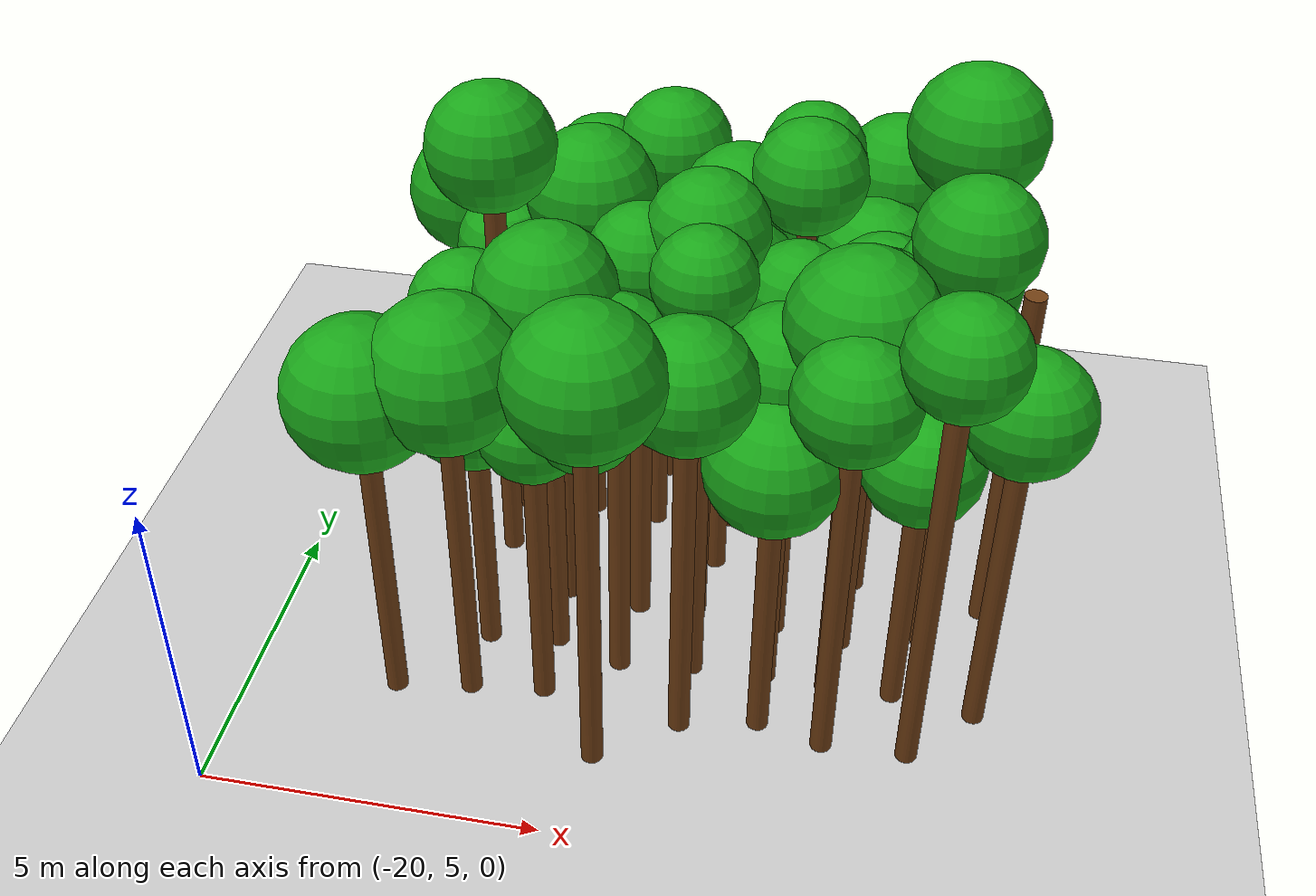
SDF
<sdf version="1.6">
 <world name="forest_world">
  <include><uri>model://sun</uri></include>
  <include><uri>model://ground_plane</uri></include>
  <model name="tree_639_trunk">
   <static>true</static>
   <pose>-17.75 7.27 2.47 0 0 0</pose>
   <link name="link">
    <collision name="collision">
     <geometry><cylinder><radius>0.16</radius><length>4.95</length></cylinder></geometry>
    </collision>
    <visual name="visual">
     <geometry><cylinder><radius>0.16</radius><length>4.95</length></cylinder></geometry>
     <material><ambient>0.35 0.20 0.05 1</ambient><diffuse>0.45 0.25 0.08 1</diffuse></material>
    </visual>
   </link>
  </model>
  <model name="tree_639_leaf">
   <static>true</static>
   <pose>-17.75 7.27 5.59 0 0 0</pose>
   <link name="link">
    <collision name="collision"><geometry><sphere><radius>1.08</radius></sphere></geometry></collision>
    <visual name="visual">
     <geometry><sphere><radius>1.08</radius></sphere></geometry>
     <material><ambient>0.05 0.45 0.05 1</ambient><diffuse>0.10 0.65 0.10 1</diffuse></material>
    </visual>
   </link>
  </model>
  <model name="tree_644_leaf">
   <static>true</static>
   <pose>-17.80 12.91 5.37 0 0 0</pose>
   <link name="link">
    <collision name="collision"><geometry><sphere><radius>1.00</radius></sphere></geometry></collision>
    <visual name="visual">
     <geometry><sphere><radius>1.00</radius></sphere></geometry>
     <material><ambient>0.05 0.45 0.05 1</ambient><diffuse>0.10 0.65 0.10 1</diffuse></material>
    </visual>
   </link>
  </model>
  <model name="tree_694_trunk">
   <static>true</static>
   <pose>-16.63 7.44 2.65 0 0 0</pose>
   <link name="link">
    <collision name="collision">
     <geometry><cylinder><radius>0.16</radius><length>5.29</length></cylinder></geometry>
    </collision>
    <visual name="visual">
     <geometry><cylinder><radius>0.16</radius><length>5.29</length></cylinder></geometry>
     <material><ambient>0.35 0.20 0.05 1</ambient><diffuse>0.45 0.25 0.08 1</diffuse></material>
    </visual>
   </link>
  </model>
  <model name="tree_694_leaf">
   <static>true</static>
   <pose>-16.63 7.44 5.95 0 0 0</pose>
   <link name="link">
    <collision name="collision"><geometry><sphere><radius>1.10</radius></sphere></geometry></collision>
    <visual name="visual">
     <geometry><sphere><radius>1.10</radius></sphere></geometry>
     <material><ambient>0.05 0.45 0.05 1</ambient><diffuse>0.10 0.65 0.10 1</diffuse></material>
    </visual>
   </link>
  </model>
  <model name="tree_695_trunk">
   <static>true</static>
   <pose>-16.62 8.53 2.06 0 0 0</pose>
   <link name="link">
    <collision name="collision">
     <geometry><cylinder><radius>0.16</radius><length>4.12</length></cylinder></geometry>
    </collision>
    <visual name="visual">
     <geometry><cylinder><radius>0.16</radius><length>4.12</length></cylinder></geometry>
     <material><ambient>0.35 0.20 0.05 1</ambient><diffuse>0.45 0.25 0.08 1</diffuse></material>
    </visual>
   </link>
  </model>
  <model name="tree_695_leaf">
   <static>true</static>
   <pose>-16.62 8.53 4.76 0 0 0</pose>
   <link name="link">
    <collision name="collision"><geometry><sphere><radius>1.06</radius></sphere></geometry></collision>
    <visual name="visual">
     <geometry><sphere><radius>1.06</radius></sphere></geometry>
     <material><ambient>0.05 0.45 0.05 1</ambient><diffuse>0.10 0.65 0.10 1</diffuse></material>
    </visual>
   </link>
  </model>
  <model name="tree_696_trunk">
   <static>true</static>
   <pose>-16.96 9.58 2.48 0 0 0</pose>
   <link name="link">
    <collision name="collision">
     <geometry><cylinder><radius>0.16</radius><length>4.96</length></cylinder></geometry>
    </collision>
    <visual name="visual">
     <geometry><cylinder><radius>0.16</radius><length>4.96</length></cylinder></geometry>
     <material><ambient>0.35 0.20 0.05 1</ambient><diffuse>0.45 0.25 0.08 1</diffuse></material>
    </visual>
   </link>
  </model>
  <model name="tree_696_leaf">
   <static>true</static>
   <pose>-16.96 9.58 5.48 0 0 0</pose>
   <link name="link">
    <collision name="collision"><geometry><sphere><radius>0.86</radius></sphere></geometry></collision>
    <visual name="visual">
     <geometry><sphere><radius>0.86</radius></sphere></geometry>
     <material><ambient>0.05 0.45 0.05 1</ambient><diffuse>0.10 0.65 0.10 1</diffuse></material>
    </visual>
   </link>
  </model>
  <model name="tree_697_trunk">
   <static>true</static>
   <pose>-16.80 10.67 3.46 0 0 0</pose>
   <link name="link">
    <collision name="collision">
     <geometry><cylinder><radius>0.16</radius><length>6.92</length></cylinder></geometry>
    </collision>
    <visual name="visual">
     <geometry><cylinder><radius>0.16</radius><length>6.92</length></cylinder></geometry>
     <material><ambient>0.35 0.20 0.05 1</ambient><diffuse>0.45 0.25 0.08 1</diffuse></material>
    </visual>
   </link>
  </model>
  <model name="tree_697_leaf">
   <static>true</static>
   <pose>-16.80 10.67 7.48 0 0 0</pose>
   <link name="link">
    <collision name="collision"><geometry><sphere><radius>0.94</radius></sphere></geometry></collision>
    <visual name="visual">
     <geometry><sphere><radius>0.94</radius></sphere></geometry>
     <material><ambient>0.05 0.45 0.05 1</ambient><diffuse>0.10 0.65 0.10 1</diffuse></material>
    </visual>
   </link>
  </model>
  <model name="tree_698_trunk">
   <static>true</static>
   <pose>-16.90 11.72 2.38 0 0 0</pose>
   <link name="link">
    <collision name="collision">
     <geometry><cylinder><radius>0.16</radius><length>4.76</length></cylinder></geometry>
    </collision>
    <visual name="visual">
     <geometry><cylinder><radius>0.16</radius><length>4.76</length></cylinder></geometry>
     <material><ambient>0.35 0.20 0.05 1</ambient><diffuse>0.45 0.25 0.08 1</diffuse></material>
    </visual>
   </link>
  </model>
  <model name="tree_698_leaf">
   <static>true</static>
   <pose>-16.90 11.72 5.24 0 0 0</pose>
   <link name="link">
    <collision name="collision"><geometry><sphere><radius>0.80</radius></sphere></geometry></collision>
    <visual name="visual">
     <geometry><sphere><radius>0.80</radius></sphere></geometry>
     <material><ambient>0.05 0.45 0.05 1</ambient><diffuse>0.10 0.65 0.10 1</diffuse></material>
    </visual>
   </link>
  </model>
  <model name="tree_699_trunk">
   <static>true</static>
   <pose>-16.88 12.76 2.26 0 0 0</pose>
   <link name="link">
    <collision name="collision">
     <geometry><cylinder><radius>0.16</radius><length>4.52</length></cylinder></geometry>
    </collision>
    <visual name="visual">
     <geometry><cylinder><radius>0.16</radius><length>4.52</length></cylinder></geometry>
     <material><ambient>0.35 0.20 0.05 1</ambient><diffuse>0.45 0.25 0.08 1</diffuse></material>
    </visual>
   </link>
  </model>
  <model name="tree_699_leaf">
   <static>true</static>
   <pose>-16.88 12.76 5.14 0 0 0</pose>
   <link name="link">
    <collision name="collision"><geometry><sphere><radius>1.03</radius></sphere></geometry></collision>
    <visual name="visual">
     <geometry><sphere><radius>1.03</radius></sphere></geometry>
     <material><ambient>0.05 0.45 0.05 1</ambient><diffuse>0.10 0.65 0.10 1</diffuse></material>
    </visual>
   </link>
  </model>
  <model name="tree_700_trunk">
   <static>true</static>
   <pose>-16.84 13.91 2.17 0 0 0</pose>
   <link name="link">
    <collision name="collision">
     <geometry><cylinder><radius>0.16</radius><length>4.34</length></cylinder></geometry>
    </collision>
    <visual name="visual">
     <geometry><cylinder><radius>0.16</radius><length>4.34</length></cylinder></geometry>
     <material><ambient>0.35 0.20 0.05 1</ambient><diffuse>0.45 0.25 0.08 1</diffuse></material>
    </visual>
   </link>
  </model>
  <model name="tree_700_leaf">
   <static>true</static>
   <pose>-16.84 13.91 4.78 0 0 0</pose>
   <link name="link">
    <collision name="collision"><geometry><sphere><radius>0.74</radius></sphere></geometry></collision>
    <visual name="visual">
     <geometry><sphere><radius>0.74</radius></sphere></geometry>
     <material><ambient>0.05 0.45 0.05 1</ambient><diffuse>0.10 0.65 0.10 1</diffuse></material>
    </visual>
   </link>
  </model>
  <model name="tree_749_trunk">
   <static>true</static>
   <pose>-15.53 7.58 2.33 0 0 0</pose>
   <link name="link">
    <collision name="collision">
     <geometry><cylinder><radius>0.16</radius><length>4.65</length></cylinder></geometry>
    </collision>
    <visual name="visual">
     <geometry><cylinder><radius>0.16</radius><length>4.65</length></cylinder></geometry>
     <material><ambient>0.35 0.20 0.05 1</ambient><diffuse>0.45 0.25 0.08 1</diffuse></material>
    </visual>
   </link>
  </model>
  <model name="tree_749_leaf">
   <static>true</static>
   <pose>-15.53 7.58 5.11 0 0 0</pose>
   <link name="link">
    <collision name="collision"><geometry><sphere><radius>0.77</radius></sphere></geometry></collision>
    <visual name="visual">
     <geometry><sphere><radius>0.77</radius></sphere></geometry>
     <material><ambient>0.05 0.45 0.05 1</ambient><diffuse>0.10 0.65 0.10 1</diffuse></material>
    </visual>
   </link>
  </model>
  <model name="tree_750_trunk">
   <static>true</static>
   <pose>-15.55 8.65 2.97 0 0 0</pose>
   <link name="link">
    <collision name="collision">
     <geometry><cylinder><radius>0.16</radius><length>5.94</length></cylinder></geometry>
    </collision>
    <visual name="visual">
     <geometry><cylinder><radius>0.16</radius><length>5.94</length></cylinder></geometry>
     <material><ambient>0.35 0.20 0.05 1</ambient><diffuse>0.45 0.25 0.08 1</diffuse></material>
    </visual>
   </link>
  </model>
  <model name="tree_750_leaf">
   <static>true</static>
   <pose>-15.55 8.65 6.54 0 0 0</pose>
   <link name="link">
    <collision name="collision"><geometry><sphere><radius>0.99</radius></sphere></geometry></collision>
    <visual name="visual">
     <geometry><sphere><radius>0.99</radius></sphere></geometry>
     <material><ambient>0.05 0.45 0.05 1</ambient><diffuse>0.10 0.65 0.10 1</diffuse></material>
    </visual>
   </link>
  </model>
  <model name="tree_751_trunk">
   <static>true</static>
   <pose>-15.61 9.73 2.45 0 0 0</pose>
   <link name="link">
    <collision name="collision">
     <geometry><cylinder><radius>0.16</radius><length>4.90</length></cylinder></geometry>
    </collision>
    <visual name="visual">
     <geometry><cylinder><radius>0.16</radius><length>4.90</length></cylinder></geometry>
     <material><ambient>0.35 0.20 0.05 1</ambient><diffuse>0.45 0.25 0.08 1</diffuse></material>
    </visual>
   </link>
  </model>
  <model name="tree_751_leaf">
   <static>true</static>
   <pose>-15.61 9.73 5.54 0 0 0</pose>
   <link name="link">
    <collision name="collision"><geometry><sphere><radius>1.07</radius></sphere></geometry></collision>
    <visual name="visual">
     <geometry><sphere><radius>1.07</radius></sphere></geometry>
     <material><ambient>0.05 0.45 0.05 1</ambient><diffuse>0.10 0.65 0.10 1</diffuse></material>
    </visual>
   </link>
  </model>
  <model name="tree_752_trunk">
   <static>true</static>
   <pose>-15.71 10.73 2.53 0 0 0</pose>
   <link name="link">
    <collision name="collision">
     <geometry><cylinder><radius>0.16</radius><length>5.05</length></cylinder></geometry>
    </collision>
    <visual name="visual">
     <geometry><cylinder><radius>0.16</radius><length>5.05</length></cylinder></geometry>
     <material><ambient>0.35 0.20 0.05 1</ambient><diffuse>0.45 0.25 0.08 1</diffuse></material>
    </visual>
   </link>
  </model>
  <model name="tree_752_leaf">
   <static>true</static>
   <pose>-15.71 10.73 5.48 0 0 0</pose>
   <link name="link">
    <collision name="collision"><geometry><sphere><radius>0.71</radius></sphere></geometry></collision>
    <visual name="visual">
     <geometry><sphere><radius>0.71</radius></sphere></geometry>
     <material><ambient>0.05 0.45 0.05 1</ambient><diffuse>0.10 0.65 0.10 1</diffuse></material>
    </visual>
   </link>
  </model>
  <model name="tree_753_trunk">
   <static>true</static>
   <pose>-15.64 11.82 2.82 0 0 0</pose>
   <link name="link">
    <collision name="collision">
     <geometry><cylinder><radius>0.16</radius><length>5.64</length></cylinder></geometry>
    </collision>
    <visual name="visual">
     <geometry><cylinder><radius>0.16</radius><length>5.64</length></cylinder></geometry>
     <material><ambient>0.35 0.20 0.05 1</ambient><diffuse>0.45 0.25 0.08 1</diffuse></material>
    </visual>
   </link>
  </model>
  <model name="tree_753_leaf">
   <static>true</static>
   <pose>-15.64 11.82 6.24 0 0 0</pose>
   <link name="link">
    <collision name="collision"><geometry><sphere><radius>0.99</radius></sphere></geometry></collision>
    <visual name="visual">
     <geometry><sphere><radius>0.99</radius></sphere></geometry>
     <material><ambient>0.05 0.45 0.05 1</ambient><diffuse>0.10 0.65 0.10 1</diffuse></material>
    </visual>
   </link>
  </model>
  <model name="tree_754_trunk">
   <static>true</static>
   <pose>-15.68 12.88 2.76 0 0 0</pose>
   <link name="link">
    <collision name="collision">
     <geometry><cylinder><radius>0.16</radius><length>5.51</length></cylinder></geometry>
    </collision>
    <visual name="visual">
     <geometry><cylinder><radius>0.16</radius><length>5.51</length></cylinder></geometry>
     <material><ambient>0.35 0.20 0.05 1</ambient><diffuse>0.45 0.25 0.08 1</diffuse></material>
    </visual>
   </link>
  </model>
  <model name="tree_754_leaf">
   <static>true</static>
   <pose>-15.68 12.88 6.01 0 0 0</pose>
   <link name="link">
    <collision name="collision"><geometry><sphere><radius>0.84</radius></sphere></geometry></collision>
    <visual name="visual">
     <geometry><sphere><radius>0.84</radius></sphere></geometry>
     <material><ambient>0.05 0.45 0.05 1</ambient><diffuse>0.10 0.65 0.10 1</diffuse></material>
    </visual>
   </link>
  </model>
  <model name="tree_803_trunk">
   <static>true</static>
   <pose>-14.55 6.47 3.12 0 0 0</pose>
   <link name="link">
    <collision name="collision">
     <geometry><cylinder><radius>0.16</radius><length>6.23</length></cylinder></geometry>
    </collision>
    <visual name="visual">
     <geometry><cylinder><radius>0.16</radius><length>6.23</length></cylinder></geometry>
     <material><ambient>0.35 0.20 0.05 1</ambient><diffuse>0.45 0.25 0.08 1</diffuse></material>
    </visual>
   </link>
  </model>
  <model name="tree_803_leaf">
   <static>true</static>
   <pose>-14.55 6.47 6.86 0 0 0</pose>
   <link name="link">
    <collision name="collision"><geometry><sphere><radius>1.04</radius></sphere></geometry></collision>
    <visual name="visual">
     <geometry><sphere><radius>1.04</radius></sphere></geometry>
     <material><ambient>0.05 0.45 0.05 1</ambient><diffuse>0.10 0.65 0.10 1</diffuse></material>
    </visual>
   </link>
  </model>
  <model name="tree_804_trunk">
   <static>true</static>
   <pose>-14.76 7.39 2.53 0 0 0</pose>
   <link name="link">
    <collision name="collision">
     <geometry><cylinder><radius>0.16</radius><length>5.06</length></cylinder></geometry>
    </collision>
    <visual name="visual">
     <geometry><cylinder><radius>0.16</radius><length>5.06</length></cylinder></geometry>
     <material><ambient>0.35 0.20 0.05 1</ambient><diffuse>0.45 0.25 0.08 1</diffuse></material>
    </visual>
   </link>
  </model>
  <model name="tree_804_leaf">
   <static>true</static>
   <pose>-14.76 7.39 5.49 0 0 0</pose>
   <link name="link">
    <collision name="collision"><geometry><sphere><radius>0.72</radius></sphere></geometry></collision>
    <visual name="visual">
     <geometry><sphere><radius>0.72</radius></sphere></geometry>
     <material><ambient>0.05 0.45 0.05 1</ambient><diffuse>0.10 0.65 0.10 1</diffuse></material>
    </visual>
   </link>
  </model>
  <model name="tree_805_trunk">
   <static>true</static>
   <pose>-14.52 8.35 2.68 0 0 0</pose>
   <link name="link">
    <collision name="collision">
     <geometry><cylinder><radius>0.16</radius><length>5.37</length></cylinder></geometry>
    </collision>
    <visual name="visual">
     <geometry><cylinder><radius>0.16</radius><length>5.37</length></cylinder></geometry>
     <material><ambient>0.35 0.20 0.05 1</ambient><diffuse>0.45 0.25 0.08 1</diffuse></material>
    </visual>
   </link>
  </model>
  <model name="tree_805_leaf">
   <static>true</static>
   <pose>-14.52 8.35 5.88 0 0 0</pose>
   <link name="link">
    <collision name="collision"><geometry><sphere><radius>0.86</radius></sphere></geometry></collision>
    <visual name="visual">
     <geometry><sphere><radius>0.86</radius></sphere></geometry>
     <material><ambient>0.05 0.45 0.05 1</ambient><diffuse>0.10 0.65 0.10 1</diffuse></material>
    </visual>
   </link>
  </model>
  <model name="tree_806_trunk">
   <static>true</static>
   <pose>-14.45 9.61 3.09 0 0 0</pose>
   <link name="link">
    <collision name="collision">
     <geometry><cylinder><radius>0.16</radius><length>6.17</length></cylinder></geometry>
    </collision>
    <visual name="visual">
     <geometry><cylinder><radius>0.16</radius><length>6.17</length></cylinder></geometry>
     <material><ambient>0.35 0.20 0.05 1</ambient><diffuse>0.45 0.25 0.08 1</diffuse></material>
    </visual>
   </link>
  </model>
  <model name="tree_806_leaf">
   <static>true</static>
   <pose>-14.45 9.61 6.63 0 0 0</pose>
   <link name="link">
    <collision name="collision"><geometry><sphere><radius>0.77</radius></sphere></geometry></collision>
    <visual name="visual">
     <geometry><sphere><radius>0.77</radius></sphere></geometry>
     <material><ambient>0.05 0.45 0.05 1</ambient><diffuse>0.10 0.65 0.10 1</diffuse></material>
    </visual>
   </link>
  </model>
  <model name="tree_807_trunk">
   <static>true</static>
   <pose>-14.65 10.56 2.47 0 0 0</pose>
   <link name="link">
    <collision name="collision">
     <geometry><cylinder><radius>0.16</radius><length>4.93</length></cylinder></geometry>
    </collision>
    <visual name="visual">
     <geometry><cylinder><radius>0.16</radius><length>4.93</length></cylinder></geometry>
     <material><ambient>0.35 0.20 0.05 1</ambient><diffuse>0.45 0.25 0.08 1</diffuse></material>
    </visual>
   </link>
  </model>
  <model name="tree_807_leaf">
   <static>true</static>
   <pose>-14.65 10.56 5.51 0 0 0</pose>
   <link name="link">
    <collision name="collision"><geometry><sphere><radius>0.97</radius></sphere></geometry></collision>
    <visual name="visual">
     <geometry><sphere><radius>0.97</radius></sphere></geometry>
     <material><ambient>0.05 0.45 0.05 1</ambient><diffuse>0.10 0.65 0.10 1</diffuse></material>
    </visual>
   </link>
  </model>
  <model name="tree_808_trunk">
   <static>true</static>
   <pose>-14.58 11.76 2.43 0 0 0</pose>
   <link name="link">
    <collision name="collision">
     <geometry><cylinder><radius>0.16</radius><length>4.87</length></cylinder></geometry>
    </collision>
    <visual name="visual">
     <geometry><cylinder><radius>0.16</radius><length>4.87</length></cylinder></geometry>
     <material><ambient>0.35 0.20 0.05 1</ambient><diffuse>0.45 0.25 0.08 1</diffuse></material>
    </visual>
   </link>
  </model>
  <model name="tree_808_leaf">
   <static>true</static>
   <pose>-14.58 11.76 5.30 0 0 0</pose>
   <link name="link">
    <collision name="collision"><geometry><sphere><radius>0.71</radius></sphere></geometry></collision>
    <visual name="visual">
     <geometry><sphere><radius>0.71</radius></sphere></geometry>
     <material><ambient>0.05 0.45 0.05 1</ambient><diffuse>0.10 0.65 0.10 1</diffuse></material>
    </visual>
   </link>
  </model>
  <model name="tree_809_trunk">
   <static>true</static>
   <pose>-14.59 13.01 2.97 0 0 0</pose>
   <link name="link">
    <collision name="collision">
     <geometry><cylinder><radius>0.16</radius><length>5.94</length></cylinder></geometry>
    </collision>
    <visual name="visual">
     <geometry><cylinder><radius>0.16</radius><length>5.94</length></cylinder></geometry>
     <material><ambient>0.35 0.20 0.05 1</ambient><diffuse>0.45 0.25 0.08 1</diffuse></material>
    </visual>
   </link>
  </model>
  <model name="tree_809_leaf">
   <static>true</static>
   <pose>-14.59 13.01 6.46 0 0 0</pose>
   <link name="link">
    <collision name="collision"><geometry><sphere><radius>0.87</radius></sphere></geometry></collision>
    <visual name="visual">
     <geometry><sphere><radius>0.87</radius></sphere></geometry>
     <material><ambient>0.05 0.45 0.05 1</ambient><diffuse>0.10 0.65 0.10 1</diffuse></material>
    </visual>
   </link>
  </model>
  <model name="tree_859_trunk">
   <static>true</static>
   <pose>-13.42 7.32 2.88 0 0 0</pose>
   <link name="link">
    <collision name="collision">
     <geometry><cylinder><radius>0.16</radius><length>5.77</length></cylinder></geometry>
    </collision>
    <visual name="visual">
     <geometry><cylinder><radius>0.16</radius><length>5.77</length></cylinder></geometry>
     <material><ambient>0.35 0.20 0.05 1</ambient><diffuse>0.45 0.25 0.08 1</diffuse></material>
    </visual>
   </link>
  </model>
  <model name="tree_859_leaf">
   <static>true</static>
   <pose>-13.42 7.32 6.32 0 0 0</pose>
   <link name="link">
    <collision name="collision"><geometry><sphere><radius>0.92</radius></sphere></geometry></collision>
    <visual name="visual">
     <geometry><sphere><radius>0.92</radius></sphere></geometry>
     <material><ambient>0.05 0.45 0.05 1</ambient><diffuse>0.10 0.65 0.10 1</diffuse></material>
    </visual>
   </link>
  </model>
  <model name="tree_860_trunk">
   <static>true</static>
   <pose>-13.42 8.47 3.37 0 0 0</pose>
   <link name="link">
    <collision name="collision">
     <geometry><cylinder><radius>0.16</radius><length>6.73</length></cylinder></geometry>
    </collision>
    <visual name="visual">
     <geometry><cylinder><radius>0.16</radius><length>6.73</length></cylinder></geometry>
     <material><ambient>0.35 0.20 0.05 1</ambient><diffuse>0.45 0.25 0.08 1</diffuse></material>
    </visual>
   </link>
  </model>
  <model name="tree_860_leaf">
   <static>true</static>
   <pose>-13.42 8.47 7.16 0 0 0</pose>
   <link name="link">
    <collision name="collision"><geometry><sphere><radius>0.71</radius></sphere></geometry></collision>
    <visual name="visual">
     <geometry><sphere><radius>0.71</radius></sphere></geometry>
     <material><ambient>0.05 0.45 0.05 1</ambient><diffuse>0.10 0.65 0.10 1</diffuse></material>
    </visual>
   </link>
  </model>
  <model name="tree_861_trunk">
   <static>true</static>
   <pose>-13.57 9.72 3.29 0 0 0</pose>
   <link name="link">
    <collision name="collision">
     <geometry><cylinder><radius>0.16</radius><length>6.58</length></cylinder></geometry>
    </collision>
    <visual name="visual">
     <geometry><cylinder><radius>0.16</radius><length>6.58</length></cylinder></geometry>
     <material><ambient>0.35 0.20 0.05 1</ambient><diffuse>0.45 0.25 0.08 1</diffuse></material>
    </visual>
   </link>
  </model>
  <model name="tree_861_leaf">
   <static>true</static>
   <pose>-13.57 9.72 7.09 0 0 0</pose>
   <link name="link">
    <collision name="collision"><geometry><sphere><radius>0.86</radius></sphere></geometry></collision>
    <visual name="visual">
     <geometry><sphere><radius>0.86</radius></sphere></geometry>
     <material><ambient>0.05 0.45 0.05 1</ambient><diffuse>0.10 0.65 0.10 1</diffuse></material>
    </visual>
   </link>
  </model>
  <model name="tree_862_trunk">
   <static>true</static>
   <pose>-13.44 10.87 2.44 0 0 0</pose>
   <link name="link">
    <collision name="collision">
     <geometry><cylinder><radius>0.16</radius><length>4.87</length></cylinder></geometry>
    </collision>
    <visual name="visual">
     <geometry><cylinder><radius>0.16</radius><length>4.87</length></cylinder></geometry>
     <material><ambient>0.35 0.20 0.05 1</ambient><diffuse>0.45 0.25 0.08 1</diffuse></material>
    </visual>
   </link>
  </model>
  <model name="tree_862_leaf">
   <static>true</static>
   <pose>-13.44 10.87 5.52 0 0 0</pose>
   <link name="link">
    <collision name="collision"><geometry><sphere><radius>1.08</radius></sphere></geometry></collision>
    <visual name="visual">
     <geometry><sphere><radius>1.08</radius></sphere></geometry>
     <material><ambient>0.05 0.45 0.05 1</ambient><diffuse>0.10 0.65 0.10 1</diffuse></material>
    </visual>
   </link>
  </model>
  <model name="tree_863_trunk">
   <static>true</static>
   <pose>-13.40 11.91 2.80 0 0 0</pose>
   <link name="link">
    <collision name="collision">
     <geometry><cylinder><radius>0.16</radius><length>5.61</length></cylinder></geometry>
    </collision>
    <visual name="visual">
     <geometry><cylinder><radius>0.16</radius><length>5.61</length></cylinder></geometry>
     <material><ambient>0.35 0.20 0.05 1</ambient><diffuse>0.45 0.25 0.08 1</diffuse></material>
    </visual>
   </link>
  </model>
  <model name="tree_863_leaf">
   <static>true</static>
   <pose>-13.40 11.91 6.18 0 0 0</pose>
   <link name="link">
    <collision name="collision"><geometry><sphere><radius>0.95</radius></sphere></geometry></collision>
    <visual name="visual">
     <geometry><sphere><radius>0.95</radius></sphere></geometry>
     <material><ambient>0.05 0.45 0.05 1</ambient><diffuse>0.10 0.65 0.10 1</diffuse></material>
    </visual>
   </link>
  </model>
  <model name="tree_864_trunk">
   <static>true</static>
   <pose>-13.33 12.74 2.20 0 0 0</pose>
   <link name="link">
    <collision name="collision">
     <geometry><cylinder><radius>0.16</radius><length>4.41</length></cylinder></geometry>
    </collision>
    <visual name="visual">
     <geometry><cylinder><radius>0.16</radius><length>4.41</length></cylinder></geometry>
     <material><ambient>0.35 0.20 0.05 1</ambient><diffuse>0.45 0.25 0.08 1</diffuse></material>
    </visual>
   </link>
  </model>
  <model name="tree_864_leaf">
   <static>true</static>
   <pose>-13.33 12.74 5.06 0 0 0</pose>
   <link name="link">
    <collision name="collision"><geometry><sphere><radius>1.08</radius></sphere></geometry></collision>
    <visual name="visual">
     <geometry><sphere><radius>1.08</radius></sphere></geometry>
     <material><ambient>0.05 0.45 0.05 1</ambient><diffuse>0.10 0.65 0.10 1</diffuse></material>
    </visual>
   </link>
  </model>
  <model name="tree_865_trunk">
   <static>true</static>
   <pose>-13.52 13.82 2.03 0 0 0</pose>
   <link name="link">
    <collision name="collision">
     <geometry><cylinder><radius>0.16</radius><length>4.07</length></cylinder></geometry>
    </collision>
    <visual name="visual">
     <geometry><cylinder><radius>0.16</radius><length>4.07</length></cylinder></geometry>
     <material><ambient>0.35 0.20 0.05 1</ambient><diffuse>0.45 0.25 0.08 1</diffuse></material>
    </visual>
   </link>
  </model>
  <model name="tree_865_leaf">
   <static>true</static>
   <pose>-13.52 13.82 4.71 0 0 0</pose>
   <link name="link">
    <collision name="collision"><geometry><sphere><radius>1.07</radius></sphere></geometry></collision>
    <visual name="visual">
     <geometry><sphere><radius>1.07</radius></sphere></geometry>
     <material><ambient>0.05 0.45 0.05 1</ambient><diffuse>0.10 0.65 0.10 1</diffuse></material>
    </visual>
   </link>
  </model>
  <model name="tree_914_trunk">
   <static>true</static>
   <pose>-12.28 7.56 2.21 0 0 0</pose>
   <link name="link">
    <collision name="collision">
     <geometry><cylinder><radius>0.16</radius><length>4.42</length></cylinder></geometry>
    </collision>
    <visual name="visual">
     <geometry><cylinder><radius>0.16</radius><length>4.42</length></cylinder></geometry>
     <material><ambient>0.35 0.20 0.05 1</ambient><diffuse>0.45 0.25 0.08 1</diffuse></material>
    </visual>
   </link>
  </model>
  <model name="tree_914_leaf">
   <static>true</static>
   <pose>-12.28 7.56 5.00 0 0 0</pose>
   <link name="link">
    <collision name="collision"><geometry><sphere><radius>0.97</radius></sphere></geometry></collision>
    <visual name="visual">
     <geometry><sphere><radius>0.97</radius></sphere></geometry>
     <material><ambient>0.05 0.45 0.05 1</ambient><diffuse>0.10 0.65 0.10 1</diffuse></material>
    </visual>
   </link>
  </model>
  <model name="tree_915_trunk">
   <static>true</static>
   <pose>-12.30 8.51 2.68 0 0 0</pose>
   <link name="link">
    <collision name="collision">
     <geometry><cylinder><radius>0.16</radius><length>5.36</length></cylinder></geometry>
    </collision>
    <visual name="visual">
     <geometry><cylinder><radius>0.16</radius><length>5.36</length></cylinder></geometry>
     <material><ambient>0.35 0.20 0.05 1</ambient><diffuse>0.45 0.25 0.08 1</diffuse></material>
    </visual>
   </link>
  </model>
  <model name="tree_915_leaf">
   <static>true</static>
   <pose>-12.30 8.51 5.89 0 0 0</pose>
   <link name="link">
    <collision name="collision"><geometry><sphere><radius>0.89</radius></sphere></geometry></collision>
    <visual name="visual">
     <geometry><sphere><radius>0.89</radius></sphere></geometry>
     <material><ambient>0.05 0.45 0.05 1</ambient><diffuse>0.10 0.65 0.10 1</diffuse></material>
    </visual>
   </link>
  </model>
  <model name="tree_916_trunk">
   <static>true</static>
   <pose>-12.30 9.58 2.93 0 0 0</pose>
   <link name="link">
    <collision name="collision">
     <geometry><cylinder><radius>0.16</radius><length>5.87</length></cylinder></geometry>
    </collision>
    <visual name="visual">
     <geometry><cylinder><radius>0.16</radius><length>5.87</length></cylinder></geometry>
     <material><ambient>0.35 0.20 0.05 1</ambient><diffuse>0.45 0.25 0.08 1</diffuse></material>
    </visual>
   </link>
  </model>
  <model name="tree_916_leaf">
   <static>true</static>
   <pose>-12.30 9.58 6.32 0 0 0</pose>
   <link name="link">
    <collision name="collision"><geometry><sphere><radius>0.76</radius></sphere></geometry></collision>
    <visual name="visual">
     <geometry><sphere><radius>0.76</radius></sphere></geometry>
     <material><ambient>0.05 0.45 0.05 1</ambient><diffuse>0.10 0.65 0.10 1</diffuse></material>
    </visual>
   </link>
  </model>
  <model name="tree_917_trunk">
   <static>true</static>
   <pose>-12.53 10.79 2.14 0 0 0</pose>
   <link name="link">
    <collision name="collision">
     <geometry><cylinder><radius>0.16</radius><length>4.28</length></cylinder></geometry>
    </collision>
    <visual name="visual">
     <geometry><cylinder><radius>0.16</radius><length>4.28</length></cylinder></geometry>
     <material><ambient>0.35 0.20 0.05 1</ambient><diffuse>0.45 0.25 0.08 1</diffuse></material>
    </visual>
   </link>
  </model>
  <model name="tree_917_leaf">
   <static>true</static>
   <pose>-12.53 10.79 4.77 0 0 0</pose>
   <link name="link">
    <collision name="collision"><geometry><sphere><radius>0.81</radius></sphere></geometry></collision>
    <visual name="visual">
     <geometry><sphere><radius>0.81</radius></sphere></geometry>
     <material><ambient>0.05 0.45 0.05 1</ambient><diffuse>0.10 0.65 0.10 1</diffuse></material>
    </visual>
   </link>
  </model>
  <model name="tree_918_trunk">
   <static>true</static>
   <pose>-12.43 11.71 3.20 0 0 0</pose>
   <link name="link">
    <collision name="collision">
     <geometry><cylinder><radius>0.16</radius><length>6.39</length></cylinder></geometry>
    </collision>
    <visual name="visual">
     <geometry><cylinder><radius>0.16</radius><length>6.39</length></cylinder></geometry>
     <material><ambient>0.35 0.20 0.05 1</ambient><diffuse>0.45 0.25 0.08 1</diffuse></material>
    </visual>
   </link>
  </model>
  <model name="tree_918_leaf">
   <static>true</static>
   <pose>-12.43 11.71 6.90 0 0 0</pose>
   <link name="link">
    <collision name="collision"><geometry><sphere><radius>0.85</radius></sphere></geometry></collision>
    <visual name="visual">
     <geometry><sphere><radius>0.85</radius></sphere></geometry>
     <material><ambient>0.05 0.45 0.05 1</ambient><diffuse>0.10 0.65 0.10 1</diffuse></material>
    </visual>
   </link>
  </model>
  <model name="tree_919_trunk">
   <static>true</static>
   <pose>-12.48 12.91 3.07 0 0 0</pose>
   <link name="link">
    <collision name="collision">
     <geometry><cylinder><radius>0.16</radius><length>6.13</length></cylinder></geometry>
    </collision>
    <visual name="visual">
     <geometry><cylinder><radius>0.16</radius><length>6.13</length></cylinder></geometry>
     <material><ambient>0.35 0.20 0.05 1</ambient><diffuse>0.45 0.25 0.08 1</diffuse></material>
    </visual>
   </link>
  </model>
  <model name="tree_919_leaf">
   <static>true</static>
   <pose>-12.48 12.91 6.60 0 0 0</pose>
   <link name="link">
    <collision name="collision"><geometry><sphere><radius>0.78</radius></sphere></geometry></collision>
    <visual name="visual">
     <geometry><sphere><radius>0.78</radius></sphere></geometry>
     <material><ambient>0.05 0.45 0.05 1</ambient><diffuse>0.10 0.65 0.10 1</diffuse></material>
    </visual>
   </link>
  </model>
  <model name="tree_969_trunk">
   <static>true</static>
   <pose>-11.31 7.33 2.94 0 0 0</pose>
   <link name="link">
    <collision name="collision">
     <geometry><cylinder><radius>0.16</radius><length>5.88</length></cylinder></geometry>
    </collision>
    <visual name="visual">
     <geometry><cylinder><radius>0.16</radius><length>5.88</length></cylinder></geometry>
     <material><ambient>0.35 0.20 0.05 1</ambient><diffuse>0.45 0.25 0.08 1</diffuse></material>
    </visual>
   </link>
  </model>
  <model name="tree_969_leaf">
   <static>true</static>
   <pose>-11.31 7.33 6.39 0 0 0</pose>
   <link name="link">
    <collision name="collision"><geometry><sphere><radius>0.85</radius></sphere></geometry></collision>
    <visual name="visual">
     <geometry><sphere><radius>0.85</radius></sphere></geometry>
     <material><ambient>0.05 0.45 0.05 1</ambient><diffuse>0.10 0.65 0.10 1</diffuse></material>
    </visual>
   </link>
  </model>
  <model name="tree_970_trunk">
   <static>true</static>
   <pose>-11.37 8.47 3.06 0 0 0</pose>
   <link name="link">
    <collision name="collision">
     <geometry><cylinder><radius>0.16</radius><length>6.11</length></cylinder></geometry>
    </collision>
    <visual name="visual">
     <geometry><cylinder><radius>0.16</radius><length>6.11</length></cylinder></geometry>
     <material><ambient>0.35 0.20 0.05 1</ambient><diffuse>0.45 0.25 0.08 1</diffuse></material>
    </visual>
   </link>
  </model>
  <model name="tree_970_leaf">
   <static>true</static>
   <pose>-11.37 8.47 6.74 0 0 0</pose>
   <link name="link">
    <collision name="collision"><geometry><sphere><radius>1.04</radius></sphere></geometry></collision>
    <visual name="visual">
     <geometry><sphere><radius>1.04</radius></sphere></geometry>
     <material><ambient>0.05 0.45 0.05 1</ambient><diffuse>0.10 0.65 0.10 1</diffuse></material>
    </visual>
   </link>
  </model>
  <model name="tree_971_trunk">
   <static>true</static>
   <pose>-11.25 9.44 2.82 0 0 0</pose>
   <link name="link">
    <collision name="collision">
     <geometry><cylinder><radius>0.16</radius><length>5.64</length></cylinder></geometry>
    </collision>
    <visual name="visual">
     <geometry><cylinder><radius>0.16</radius><length>5.64</length></cylinder></geometry>
     <material><ambient>0.35 0.20 0.05 1</ambient><diffuse>0.45 0.25 0.08 1</diffuse></material>
    </visual>
   </link>
  </model>
  <model name="tree_971_leaf">
   <static>true</static>
   <pose>-11.25 9.44 6.21 0 0 0</pose>
   <link name="link">
    <collision name="collision"><geometry><sphere><radius>0.95</radius></sphere></geometry></collision>
    <visual name="visual">
     <geometry><sphere><radius>0.95</radius></sphere></geometry>
     <material><ambient>0.05 0.45 0.05 1</ambient><diffuse>0.10 0.65 0.10 1</diffuse></material>
    </visual>
   </link>
  </model>
  <model name="tree_972_trunk">
   <static>true</static>
   <pose>-11.17 10.79 2.52 0 0 0</pose>
   <link name="link">
    <collision name="collision">
     <geometry><cylinder><radius>0.16</radius><length>5.04</length></cylinder></geometry>
    </collision>
    <visual name="visual">
     <geometry><cylinder><radius>0.16</radius><length>5.04</length></cylinder></geometry>
     <material><ambient>0.35 0.20 0.05 1</ambient><diffuse>0.45 0.25 0.08 1</diffuse></material>
    </visual>
   </link>
  </model>
  <model name="tree_972_leaf">
   <static>true</static>
   <pose>-11.17 10.79 5.52 0 0 0</pose>
   <link name="link">
    <collision name="collision"><geometry><sphere><radius>0.80</radius></sphere></geometry></collision>
    <visual name="visual">
     <geometry><sphere><radius>0.80</radius></sphere></geometry>
     <material><ambient>0.05 0.45 0.05 1</ambient><diffuse>0.10 0.65 0.10 1</diffuse></material>
    </visual>
   </link>
  </model>
  <model name="tree_973_trunk">
   <static>true</static>
   <pose>-11.23 11.70 2.29 0 0 0</pose>
   <link name="link">
    <collision name="collision">
     <geometry><cylinder><radius>0.16</radius><length>4.58</length></cylinder></geometry>
    </collision>
    <visual name="visual">
     <geometry><cylinder><radius>0.16</radius><length>4.58</length></cylinder></geometry>
     <material><ambient>0.35 0.20 0.05 1</ambient><diffuse>0.45 0.25 0.08 1</diffuse></material>
    </visual>
   </link>
  </model>
  <model name="tree_973_leaf">
   <static>true</static>
   <pose>-11.23 11.70 5.11 0 0 0</pose>
   <link name="link">
    <collision name="collision"><geometry><sphere><radius>0.88</radius></sphere></geometry></collision>
    <visual name="visual">
     <geometry><sphere><radius>0.88</radius></sphere></geometry>
     <material><ambient>0.05 0.45 0.05 1</ambient><diffuse>0.10 0.65 0.10 1</diffuse></material>
    </visual>
   </link>
  </model>
  <model name="tree_974_trunk">
   <static>true</static>
   <pose>-11.43 12.75 2.19 0 0 0</pose>
   <link name="link">
    <collision name="collision">
     <geometry><cylinder><radius>0.16</radius><length>4.38</length></cylinder></geometry>
    </collision>
    <visual name="visual">
     <geometry><cylinder><radius>0.16</radius><length>4.38</length></cylinder></geometry>
     <material><ambient>0.35 0.20 0.05 1</ambient><diffuse>0.45 0.25 0.08 1</diffuse></material>
    </visual>
   </link>
  </model>
  <model name="tree_974_leaf">
   <static>true</static>
   <pose>-11.43 12.75 4.97 0 0 0</pose>
   <link name="link">
    <collision name="collision"><geometry><sphere><radius>0.97</radius></sphere></geometry></collision>
    <visual name="visual">
     <geometry><sphere><radius>0.97</radius></sphere></geometry>
     <material><ambient>0.05 0.45 0.05 1</ambient><diffuse>0.10 0.65 0.10 1</diffuse></material>
    </visual>
   </link>
  </model>
  <model name="tree_975_trunk">
   <static>true</static>
   <pose>-11.23 13.92 2.64 0 0 0</pose>
   <link name="link">
    <collision name="collision">
     <geometry><cylinder><radius>0.16</radius><length>5.29</length></cylinder></geometry>
    </collision>
    <visual name="visual">
     <geometry><cylinder><radius>0.16</radius><length>5.29</length></cylinder></geometry>
     <material><ambient>0.35 0.20 0.05 1</ambient><diffuse>0.45 0.25 0.08 1</diffuse></material>
    </visual>
   </link>
  </model>
  <model name="tree_975_leaf">
   <static>true</static>
   <pose>-11.23 13.92 5.84 0 0 0</pose>
   <link name="link">
    <collision name="collision"><geometry><sphere><radius>0.92</radius></sphere></geometry></collision>
    <visual name="visual">
     <geometry><sphere><radius>0.92</radius></sphere></geometry>
     <material><ambient>0.05 0.45 0.05 1</ambient><diffuse>0.10 0.65 0.10 1</diffuse></material>
    </visual>
   </link>
  </model>
  <model name="tree_1024_trunk">
   <static>true</static>
   <pose>-10.07 7.38 3.35 0 0 0</pose>
   <link name="link">
    <collision name="collision">
     <geometry><cylinder><radius>0.16</radius><length>6.71</length></cylinder></geometry>
    </collision>
    <visual name="visual">
     <geometry><cylinder><radius>0.16</radius><length>6.71</length></cylinder></geometry>
     <material><ambient>0.35 0.20 0.05 1</ambient><diffuse>0.45 0.25 0.08 1</diffuse></material>
    </visual>
   </link>
  </model>
  <model name="tree_1024_leaf">
   <static>true</static>
   <pose>-10.07 7.38 7.19 0 0 0</pose>
   <link name="link">
    <collision name="collision"><geometry><sphere><radius>0.81</radius></sphere></geometry></collision>
    <visual name="visual">
     <geometry><sphere><radius>0.81</radius></sphere></geometry>
     <material><ambient>0.05 0.45 0.05 1</ambient><diffuse>0.10 0.65 0.10 1</diffuse></material>
    </visual>
   </link>
  </model>
  <model name="tree_1025_trunk">
   <static>true</static>
   <pose>-10.38 8.50 2.02 0 0 0</pose>
   <link name="link">
    <collision name="collision">
     <geometry><cylinder><radius>0.16</radius><length>4.04</length></cylinder></geometry>
    </collision>
    <visual name="visual">
     <geometry><cylinder><radius>0.16</radius><length>4.04</length></cylinder></geometry>
     <material><ambient>0.35 0.20 0.05 1</ambient><diffuse>0.45 0.25 0.08 1</diffuse></material>
    </visual>
   </link>
  </model>
  <model name="tree_1025_leaf">
   <static>true</static>
   <pose>-10.38 8.50 4.56 0 0 0</pose>
   <link name="link">
    <collision name="collision"><geometry><sphere><radius>0.87</radius></sphere></geometry></collision>
    <visual name="visual">
     <geometry><sphere><radius>0.87</radius></sphere></geometry>
     <material><ambient>0.05 0.45 0.05 1</ambient><diffuse>0.10 0.65 0.10 1</diffuse></material>
    </visual>
   </link>
  </model>
  <model name="tree_1026_trunk">
   <static>true</static>
   <pose>-10.04 9.75 3.42 0 0 0</pose>
   <link name="link">
    <collision name="collision">
     <geometry><cylinder><radius>0.16</radius><length>6.84</length></cylinder></geometry>
    </collision>
    <visual name="visual">
     <geometry><cylinder><radius>0.16</radius><length>6.84</length></cylinder></geometry>
     <material><ambient>0.35 0.20 0.05 1</ambient><diffuse>0.45 0.25 0.08 1</diffuse></material>
    </visual>
   </link>
  </model>
  <model name="tree_1026_leaf">
   <static>true</static>
   <pose>-10.04 9.75 7.36 0 0 0</pose>
   <link name="link">
    <collision name="collision"><geometry><sphere><radius>0.87</radius></sphere></geometry></collision>
    <visual name="visual">
     <geometry><sphere><radius>0.87</radius></sphere></geometry>
     <material><ambient>0.05 0.45 0.05 1</ambient><diffuse>0.10 0.65 0.10 1</diffuse></material>
    </visual>
   </link>
  </model>
  <model name="tree_1027_trunk">
   <static>true</static>
   <pose>-10.20 10.67 2.74 0 0 0</pose>
   <link name="link">
    <collision name="collision">
     <geometry><cylinder><radius>0.16</radius><length>5.49</length></cylinder></geometry>
    </collision>
    <visual name="visual">
     <geometry><cylinder><radius>0.16</radius><length>5.49</length></cylinder></geometry>
     <material><ambient>0.35 0.20 0.05 1</ambient><diffuse>0.45 0.25 0.08 1</diffuse></material>
    </visual>
   </link>
  </model>
  <model name="tree_1027_leaf">
   <static>true</static>
   <pose>-10.20 10.67 6.04 0 0 0</pose>
   <link name="link">
    <collision name="collision"><geometry><sphere><radius>0.91</radius></sphere></geometry></collision>
    <visual name="visual">
     <geometry><sphere><radius>0.91</radius></sphere></geometry>
     <material><ambient>0.05 0.45 0.05 1</ambient><diffuse>0.10 0.65 0.10 1</diffuse></material>
    </visual>
   </link>
  </model>
  <model name="tree_1028_trunk">
   <static>true</static>
   <pose>-10.09 11.78 2.46 0 0 0</pose>
   <link name="link">
    <collision name="collision">
     <geometry><cylinder><radius>0.16</radius><length>4.92</length></cylinder></geometry>
    </collision>
    <visual name="visual">
     <geometry><cylinder><radius>0.16</radius><length>4.92</length></cylinder></geometry>
     <material><ambient>0.35 0.20 0.05 1</ambient><diffuse>0.45 0.25 0.08 1</diffuse></material>
    </visual>
   </link>
  </model>
  <model name="tree_1028_leaf">
   <static>true</static>
   <pose>-10.09 11.78 5.35 0 0 0</pose>
   <link name="link">
    <collision name="collision"><geometry><sphere><radius>0.73</radius></sphere></geometry></collision>
    <visual name="visual">
     <geometry><sphere><radius>0.73</radius></sphere></geometry>
     <material><ambient>0.05 0.45 0.05 1</ambient><diffuse>0.10 0.65 0.10 1</diffuse></material>
    </visual>
   </link>
  </model>
  <model name="tree_1029_trunk">
   <static>true</static>
   <pose>-10.14 12.94 3.28 0 0 0</pose>
   <link name="link">
    <collision name="collision">
     <geometry><cylinder><radius>0.16</radius><length>6.55</length></cylinder></geometry>
    </collision>
    <visual name="visual">
     <geometry><cylinder><radius>0.16</radius><length>6.55</length></cylinder></geometry>
     <material><ambient>0.35 0.20 0.05 1</ambient><diffuse>0.45 0.25 0.08 1</diffuse></material>
    </visual>
   </link>
  </model>
  <model name="tree_1029_leaf">
   <static>true</static>
   <pose>-10.14 12.94 7.17 0 0 0</pose>
   <link name="link">
    <collision name="collision"><geometry><sphere><radius>1.04</radius></sphere></geometry></collision>
    <visual name="visual">
     <geometry><sphere><radius>1.04</radius></sphere></geometry>
     <material><ambient>0.05 0.45 0.05 1</ambient><diffuse>0.10 0.65 0.10 1</diffuse></material>
    </visual>
   </link>
  </model>
  <model name="tree_1030_trunk">
   <static>true</static>
   <pose>-10.36 13.83 2.37 0 0 0</pose>
   <link name="link">
    <collision name="collision">
     <geometry><cylinder><radius>0.16</radius><length>4.74</length></cylinder></geometry>
    </collision>
    <visual name="visual">
     <geometry><cylinder><radius>0.16</radius><length>4.74</length></cylinder></geometry>
     <material><ambient>0.35 0.20 0.05 1</ambient><diffuse>0.45 0.25 0.08 1</diffuse></material>
    </visual>
   </link>
  </model>
  <model name="tree_1030_leaf">
   <static>true</static>
   <pose>-10.36 13.83 5.22 0 0 0</pose>
   <link name="link">
    <collision name="collision"><geometry><sphere><radius>0.81</radius></sphere></geometry></collision>
    <visual name="visual">
     <geometry><sphere><radius>0.81</radius></sphere></geometry>
     <material><ambient>0.05 0.45 0.05 1</ambient><diffuse>0.10 0.65 0.10 1</diffuse></material>
    </visual>
   </link>
  </model>
  <model name="tree_1080_trunk">
   <static>true</static>
   <pose>-9.15 8.32 2.61 0 0 0</pose>
   <link name="link">
    <collision name="collision">
     <geometry><cylinder><radius>0.16</radius><length>5.23</length></cylinder></geometry>
    </collision>
    <visual name="visual">
     <geometry><cylinder><radius>0.16</radius><length>5.23</length></cylinder></geometry>
     <material><ambient>0.35 0.20 0.05 1</ambient><diffuse>0.45 0.25 0.08 1</diffuse></material>
    </visual>
   </link>
  </model>
  <model name="tree_1080_leaf">
   <static>true</static>
   <pose>-9.15 8.32 5.76 0 0 0</pose>
   <link name="link">
    <collision name="collision"><geometry><sphere><radius>0.89</radius></sphere></geometry></collision>
    <visual name="visual">
     <geometry><sphere><radius>0.89</radius></sphere></geometry>
     <material><ambient>0.05 0.45 0.05 1</ambient><diffuse>0.10 0.65 0.10 1</diffuse></material>
    </visual>
   </link>
  </model>
  <model name="tree_1082_trunk">
   <static>true</static>
   <pose>-9.14 10.52 3.05 0 0 0</pose>
   <link name="link">
    <collision name="collision">
     <geometry><cylinder><radius>0.16</radius><length>6.10</length></cylinder></geometry>
    </collision>
    <visual name="visual">
     <geometry><cylinder><radius>0.16</radius><length>6.10</length></cylinder></geometry>
     <material><ambient>0.35 0.20 0.05 1</ambient><diffuse>0.45 0.25 0.08 1</diffuse></material>
    </visual>
   </link>
  </model>
 </world>
</sdf>
